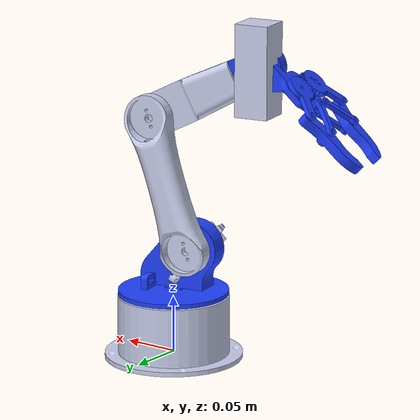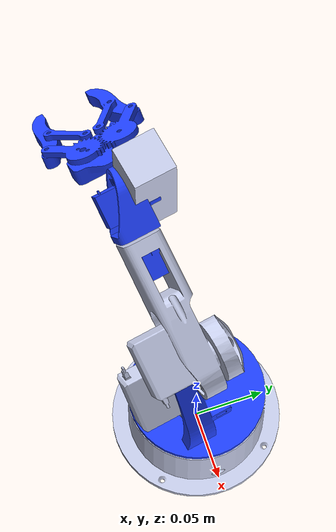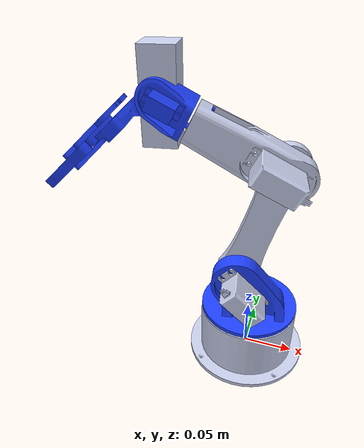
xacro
<?xml version="1.0" encoding="utf-8"?>
<robot name="robot_arm" xmlns:xacro="http://www.ros.org/wiki/xacro">

  <!--  Robot Arm küçük 6DOF robot kol — ROS2 XACRO                          -->
  <!--  Kaynak: SolidWorks SW2URDF export (robot_arm_kucuk_robot_kol/)       -->
  <!--  ROS2 migration + isim temizliği (2026-07-04)                    -->
  <!--  NOT: Servolar 360° modifiyeli → tüm eklemler CONTINUOUS.        -->
  <!--  NOT: Eklem origin rpy'leri CAD'in export pozundan geliyor;      -->
  <!--       sıfır poz "düz kol" DEĞİL. Yeniden export ile düzelir.     -->

  <!-- SİM varyantı: finger_right ikinci SÜRÜCÜ eklem (gz-sim mimic desteklemiyor). -->
  <xacro:arg name="gripper_sim" default="true"/>

  <xacro:include filename="$(find robot_arm_description)/urdf/robot_arm_body.xacro"/>

  <xacro:arg name="camera_parent" default="link_5"/>
  <xacro:arg name="camera_mount_xyz" default="0 0 0"/>
  <xacro:arg name="camera_mount_rpy" default="0 0 0"/>
  <xacro:include filename="$(find robot_arm_description)/urdf/robot_arm_camera.xacro"/>
  <xacro:robot_arm_cameraera parent="$(arg camera_parent)"
                     xyz="$(arg camera_mount_xyz)" rpy="$(arg camera_mount_rpy)"/>

  <!-- ==================== ROS2 CONTROL ==================== -->
  <ros2_control name="robot_arm_system" type="system">
    <hardware>
      <plugin>gz_ros2_control/GazeboSimSystem</plugin>
    </hardware>
    <xacro:macro name="robot_arm_ctrl_joint" params="name">
      <joint name="${name}">
        <command_interface name="position"/>
        <state_interface name="position"/>
        <state_interface name="velocity"/>
        <state_interface name="effort"/>
      </joint>
    </xacro:macro>
    <xacro:robot_arm_ctrl_joint name="joint_1"/>
    <xacro:robot_arm_ctrl_joint name="joint_2"/>
    <xacro:robot_arm_ctrl_joint name="joint_3"/>
    <xacro:robot_arm_ctrl_joint name="joint_4"/>
    <xacro:robot_arm_ctrl_joint name="joint_5"/>
    <xacro:robot_arm_ctrl_joint name="joint_6"/>
    <!-- SİM: finger_right ayrı sürülür (gz mimic yok); real'de bu joint mimic. -->
    <xacro:robot_arm_ctrl_joint name="joint_6_mirror"/>
  </ros2_control>

  <gazebo reference="camera_link">
    <sensor name="rgbd_camera" type="rgbd_camera">
      <always_on>1</always_on>
      <update_rate>10</update_rate>
      <visualize>true</visualize>
      <topic>camera</topic>
      <gz_frame_id>camera_optical_frame</gz_frame_id>
      <camera>
        <horizontal_fov>1.047</horizontal_fov>
        <image><width>640</width><height>480</height><format>R8G8B8</format></image>
        <clip><near>0.08</near><far>2.0</far></clip>
        <depth_camera><clip><near>0.08</near><far>2.0</far></clip></depth_camera>
      </camera>
    </sensor>
  </gazebo>

  <!-- gz_ros2_control plugin -->
  <gazebo>
    <plugin filename="gz_ros2_control-system"
            name="gz_ros2_control::GazeboSimROS2ControlPlugin">
      <parameters>$(find robot_arm_description)/config/robot_arm_controllers.yaml</parameters>
    </plugin>
  </gazebo>

</robot>

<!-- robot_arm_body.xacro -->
<robot xmlns:xacro="http://www.ros.org/wiki/xacro">

  <!--  Robot Arm kol — ORTAK GÖVDE (linkler, eklemler, materyaller)         -->
  <!--  Sim (robot_arm.urdf.xacro) ve real (robot_arm_real.urdf.xacro)    -->
  <!--  varyantları bu dosyayı include eder. ros2_control BURADA YOK.   -->

  <xacro:property name="servo_effort" value="5.0"/>
  <xacro:property name="servo_vel" value="3.0"/>

  <material name="robot_arm_grey">
    <color rgba="0.79216 0.81961 0.93333 1"/>
  </material>
  <material name="robot_arm_blue">
    <color rgba="0.12157 0.2549 1 1"/>
  </material>

  <!-- Link makrosu: visual+collision aynı mesh (CAD'den), inertial CAD'den -->
  <xacro:macro name="robot_arm_link" params="name material com_xyz mass ixx ixy ixz iyy iyz izz">
    <link name="${name}">
      <inertial>
        <origin xyz="${com_xyz}" rpy="0 0 0"/>
        <mass value="${mass}"/>
        <inertia ixx="${ixx}" ixy="${ixy}" ixz="${ixz}" iyy="${iyy}" iyz="${iyz}" izz="${izz}"/>
      </inertial>
      <visual>
        <origin xyz="0 0 0" rpy="0 0 0"/>
        <geometry>
          <mesh filename="package://robot_arm_description/meshes/${name}.stl"/>
        </geometry>
        <material name="${material}"/>
      </visual>
      <collision>
        <origin xyz="0 0 0" rpy="0 0 0"/>
        <geometry>
          <mesh filename="package://robot_arm_description/meshes/${name}.stl"/>
        </geometry>
      </collision>
    </link>
  </xacro:macro>

  <!-- ==================== DÜNYA SABİTLEME ==================== -->
  <link name="world"/>
  <joint name="world_joint" type="fixed">
    <origin xyz="0 0 0" rpy="0 0 0"/>
    <parent link="world"/>
    <child link="base_link"/>
  </joint>

  <!-- ==================== LINKLER ==================== -->
  <xacro:robot_arm_link name="base_link" material="robot_arm_grey"
    com_xyz="0.0001172 -3.0598E-09 0.018304" mass="0.096038"
    ixx="0.00012799" ixy="-2.1831E-11" ixz="3.914E-06"
    iyy="0.00013766" iyz="4.0544E-13" izz="0.00020798"/>

  <xacro:robot_arm_link name="link_1" material="robot_arm_blue"
    com_xyz="-0.0033772 -0.0043903 -0.0015797" mass="0.10191"
    ixx="5.1509E-05" ixy="-2.9079E-06" ixz="4.9375E-06"
    iyy="6.7062E-05" iyz="6.2102E-06" izz="6.0692E-05"/>

  <xacro:robot_arm_link name="link_2" material="robot_arm_grey"
    com_xyz="0.013834 -0.034495 -0.0020331" mass="0.098262"
    ixx="0.00010641" ixy="2.5451E-05" ixz="2.6693E-07"
    iyy="2.5145E-05" iyz="-3.1117E-08" izz="0.00011785"/>

  <xacro:robot_arm_link name="link_3" material="robot_arm_grey"
    com_xyz="-0.024318 -0.012624 -0.017225" mass="0.084146"
    ixx="2.5357E-05" ixy="-1.9923E-05" ixz="-5.0466E-07"
    iyy="5.3949E-05" iyz="-2.5796E-07" izz="6.4166E-05"/>

  <xacro:robot_arm_link name="link_4" material="robot_arm_blue"
    com_xyz="0.0032598 0.0052262 0.0090621" mass="0.023628"
    ixx="4.5347E-06" ixy="-4.3992E-07" ixz="2.5392E-07"
    iyy="5.501E-06" iyz="-5.1868E-07" izz="2.9871E-06"/>

  <xacro:robot_arm_link name="link_5" material="robot_arm_blue"
    com_xyz="0.013262 -0.0088243 -0.011785" mass="0.02285"
    ixx="4.2901E-06" ixy="2.6038E-06" ixz="1.2489E-06"
    iyy="7.4874E-06" iyz="-7.3813E-07" izz="7.6221E-06"/>

  <!-- ==================== EKLEMLER ==================== -->
  <!-- Origin xyz/rpy değerleri SW2URDF export'undan birebir alındı -->
  <xacro:macro name="robot_arm_joint" params="name parent child xyz rpy lower:=-1.57 upper:=1.57">
    <joint name="${name}" type="revolute">
      <origin xyz="${xyz}" rpy="${rpy}"/>
      <parent link="${parent}"/>
      <child link="${child}"/>
      <axis xyz="0 0 -1"/>
      <limit lower="${lower}" upper="${upper}" effort="${servo_effort}" velocity="${servo_vel}"/>
      <dynamics damping="0.05" friction="0.02"/>
    </joint>
  </xacro:macro>

  <xacro:robot_arm_joint name="joint_1" parent="base_link" child="link_1"
    xyz="0 0 0.057" rpy="0 0 0" lower="-1.52" upper="1.52"/>
  <xacro:robot_arm_joint name="joint_2" parent="link_1" child="link_2"
    xyz="-0.012979 -0.0064242 0.036276" rpy="-1.5708 0 0.17977"
    lower="-1.52" upper="1.52"/>
  <xacro:robot_arm_joint name="joint_3" parent="link_2" child="link_3"
    xyz="0.035175 -0.11496 0.0022" rpy="0 0 0" lower="-1.52" upper="1.52"/>
  <xacro:robot_arm_joint name="joint_4" parent="link_3" child="link_4"
    xyz="-0.082205 -0.036372 -0.0107" rpy="1.5708 0.37973 -1.098"
    lower="-1.52" upper="1.52"/>
  <xacro:robot_arm_joint name="joint_5" parent="link_4" child="link_5"
    xyz="-0.0027195 0.020778 0.02985" rpy="1.5708 -1.098 -2.7705"
    lower="-1.52" upper="0.86"/>
  <!-- ==================== GRIPPER (GERÇEK CAD mesh, dişli-parmak) ==================== -->
  <joint name="palm_joint" type="fixed">
    <origin xyz="0.0373 -0.015771 -0.0229" rpy="1.5708 0.23854 2.3886"/>
    <parent link="link_5"/>
    <child link="link_6"/>
  </joint>

  <link name="link_6">
    <inertial>
      <origin xyz="-0.017 0.007 0" rpy="0 0 0"/>
      <mass value="0.020"/>
      <inertia ixx="6.0e-06" ixy="0" ixz="0" iyy="6.0e-06" iyz="0" izz="1.0e-05"/>
    </inertial>
    <visual>
      <geometry><mesh filename="package://robot_arm_description/meshes/gripper_base.stl"/></geometry>
      <material name="robot_arm_blue"/>
    </visual>
    <collision>
      <origin xyz="-0.017 0.007 0" rpy="0 0 0"/>
      <geometry><box size="0.058 0.069 0.017"/></geometry>
    </collision>
  </link>

  <!-- Alt parmak (comp5) — joint_6 sürücü. Mesh pivota göre re-origined. -->
  <link name="finger_lower">
    <inertial>
      <origin xyz="-0.029 0 0" rpy="0 0 0"/>
      <mass value="0.006"/>
      <inertia ixx="2.0e-07" ixy="0" ixz="0" iyy="2.5e-06" iyz="0" izz="2.5e-06"/>
    </inertial>
    <visual>
      <geometry><mesh filename="package://robot_arm_description/meshes/gripper_finger_lower.stl"/></geometry>
      <material name="robot_arm_blue"/>
    </visual>
    <collision>
      <origin xyz="-0.029 0 0" rpy="0 0 0"/>
      <geometry><box size="0.066 0.016 0.0085"/></geometry>
    </collision>
  </link>

  <!-- Üst parmak (comp0) — joint_6_mirror. -->
  <link name="finger_upper">
    <inertial>
      <origin xyz="-0.031 0.012 0" rpy="0 0 0"/>
      <mass value="0.008"/>
      <inertia ixx="4.0e-07" ixy="0" ixz="0" iyy="3.0e-06" iyz="0" izz="3.0e-06"/>
    </inertial>
    <visual>
      <geometry><mesh filename="package://robot_arm_description/meshes/gripper_finger_upper.stl"/></geometry>
      <material name="robot_arm_blue"/>
    </visual>
    <collision>
      <origin xyz="-0.031 0.012 0" rpy="0 0 0"/>
      <geometry><box size="0.070 0.033 0.017"/></geometry>
    </collision>
  </link>

  <!-- joint_6 = GRIPPER servosu → alt parmağı kendi pivotunda çevirir.
       axis +Z: joint_6>0 = parmak AÇILIR (render doğrulandı). -->
  <joint name="joint_6" type="revolute">
    <origin xyz="-0.019 -0.023 0" rpy="0 0 0"/>
    <parent link="link_6"/>
    <child link="finger_lower"/>
    <axis xyz="0 0 1"/>
    <limit lower="-0.25" upper="0.35" effort="${servo_effort}" velocity="${servo_vel}"/>
    <dynamics damping="0.05" friction="0.02"/>
  </joint>

  <joint name="joint_6_mirror" type="revolute">
    <origin xyz="-0.024 0.014 0" rpy="0 0 0"/>
    <parent link="link_6"/>
    <child link="finger_upper"/>
    <axis xyz="0 0 1"/>
    <limit lower="-0.35" upper="0.25" effort="${servo_effort}" velocity="${servo_vel}"/>
    <xacro:unless value="$(arg gripper_sim)">
      <mimic joint="joint_6" multiplier="-1.0" offset="0.0"/>
    </xacro:unless>
    <dynamics damping="0.05" friction="0.02"/>
  </joint>

  <!-- ==================== TCP / TOOL FRAME ==================== -->
  <link name="tool0"/>
  <joint name="tool0_joint" type="fixed">
    <origin xyz="0.09475 -0.07099 -0.00352" rpy="1.33226 0 0.8178"/>
    <parent link="link_5"/>
    <child link="tool0"/>
  </joint>

</robot>

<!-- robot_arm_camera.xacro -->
<robot xmlns:xacro="http://www.ros.org/wiki/xacro">

  <!--  Robot Arm kamera — EYE-IN-HAND (kamera KOLUN ÜZERİNDE)               -->
  <!--  2026-07-26 KULLANICI TEYİDİ: IMX219 kola monte; gripper          -->
  <!--  parmakları kamera görüntüsünde GÖRÜNÜYOR. Yani kamera SABİT      -->
  <!--  DEĞİL — joint_1..joint_5 hareketiyle birlikte gezer.             -->
  <!--  Bu dosya öncesinde camera_link `world`e sabit bir joint ile      -->
  <!--  (0,0,0.60) asılıydı ve yorumlar "eye-to-hand, workspace         -->
  <!--  üzerinde ortalanmış" diyordu → URDF ile gerçeklik çelişiyordu.   -->
  <!--  TF'e dayanan her şey (projeksiyon, hand-eye, vizyon-encoder)     -->
  <!--  bu yüzden sessizce yanlış sonuç üretirdi.                        -->
  <!--  ⚠ MONTAJ TRANSFORMU ÖLÇÜLMEDİ (parent link → camera_link).       -->
  <!--  Default xyz/rpy = 0 → kasten AŞİKÂR ŞEKİLDE YANLIŞ (kamera       -->
  <!--  bileğin içinde). Uydurma bir "makul" sayı konmadı; bu projenin   -->
  <!--  kuralı ölçmek; varsayım yerine ölçüm kullanılmalıdır.            -->
  <!--  Ölçüm gelene kadar:                                             -->
  <!--    * sim'deki kamera görüntüsü ANLAMSIZ,                          -->
  <!--    * camera_optical_frame → base_link TF'i KULLANILAMAZ.          -->
  <!--  Ölçüm/kalibrasyon sonucu launch'tan geçirilebilir:               -->
  <!--    xacro ... camera_mount_xyz:="x y z" camera_mount_rpy:="r p y"  -->
  <!--  ve kalıcı değer olarak bu argümanların default'una yazılır.       -->

  <xacro:macro name="robot_arm_cameraera" params="parent xyz rpy">
    <link name="camera_link">
      <inertial>
        <mass value="0.05"/>
        <inertia ixx="1e-5" ixy="0" ixz="0" iyy="1e-5" iyz="0" izz="1e-5"/>
      </inertial>
      <visual>
        <geometry><box size="0.03 0.08 0.03"/></geometry>
        <material name="robot_arm_grey"/>
      </visual>
    </link>

    <joint name="camera_mount_joint" type="fixed">
      <origin xyz="${xyz}" rpy="${rpy}"/>
      <parent link="${parent}"/>
      <child link="camera_link"/>
    </joint>

    <!-- REP-103 optik frame (z ileri, x sağ, y aşağı). Bu dönüş kamera
         konvansiyonu, montaj ölçümü değil → sabit kalır. -->
    <link name="camera_optical_frame"/>
    <joint name="camera_optical_joint" type="fixed">
      <origin xyz="0 0 0" rpy="-1.5708 0 -1.5708"/>
      <parent link="camera_link"/>
      <child link="camera_optical_frame"/>
    </joint>
  </xacro:macro>

</robot>
